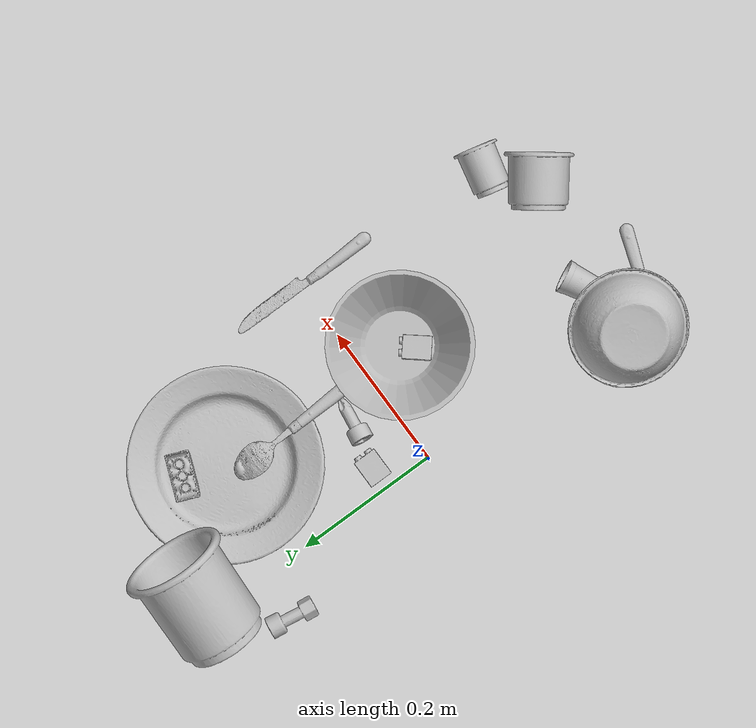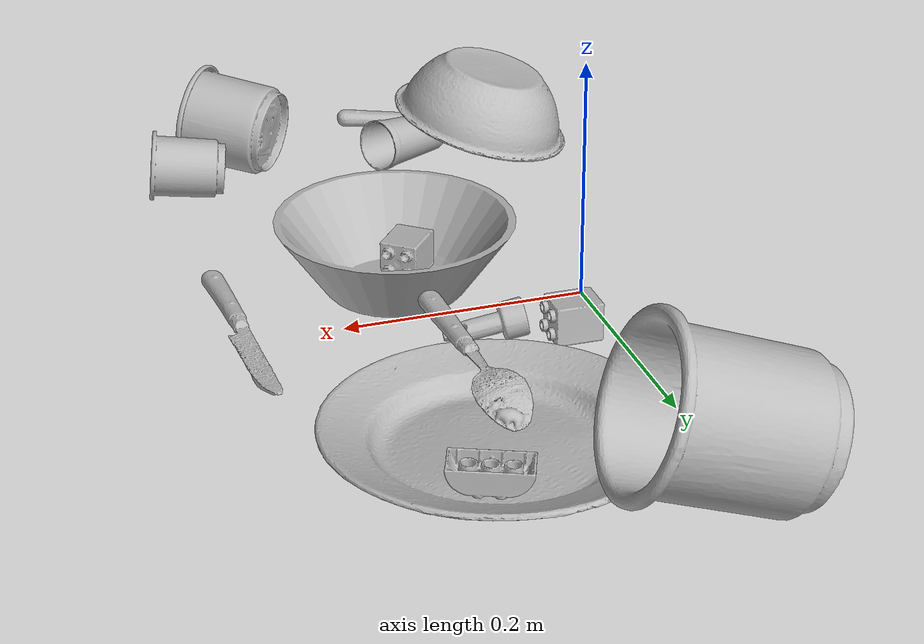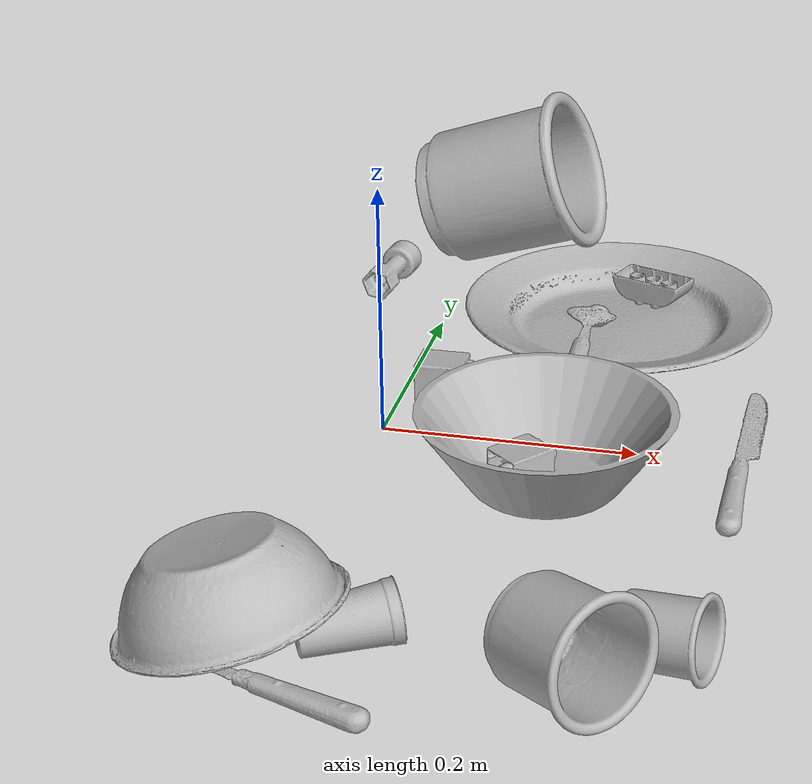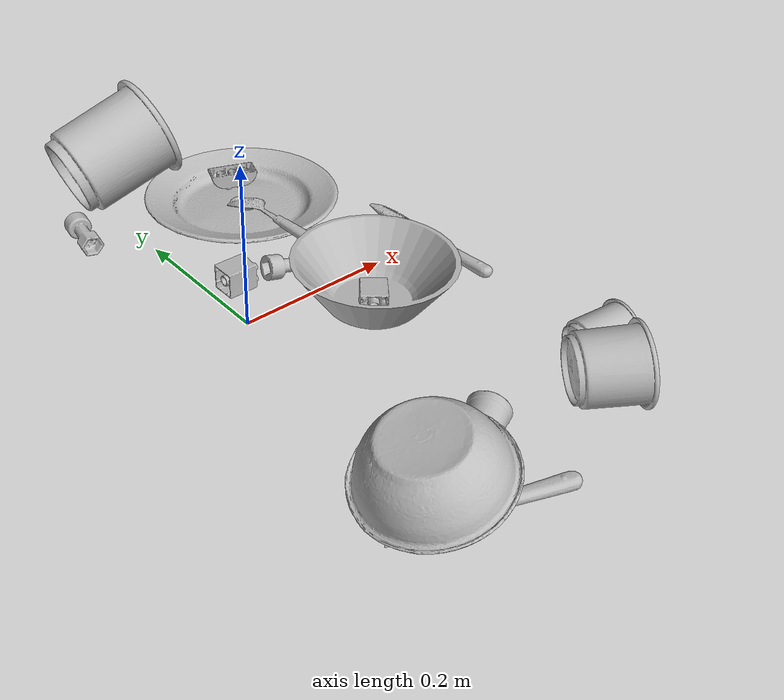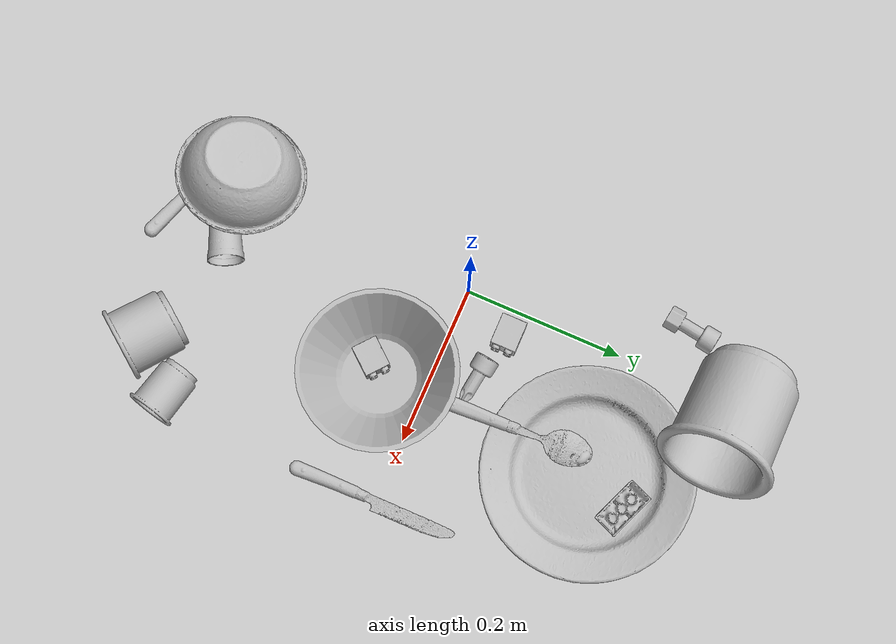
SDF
<sdf version="1.4">
  <world name="default">
    <light name="light1" type="point">
      <pose>0 0 1 0 0 0</pose>
      <diffuse>3 3 3 1</diffuse>
      <specular>3 3 3 1</specular>
    </light>
    <light name="light2" type="point">
      <pose>0 0.5 2 0 0 0</pose>
      <diffuse>1 1 1 1</diffuse>
      <specular>1 1 1 1</specular>
    </light>
    <light name="light3" type="point">
      <pose>0 0.5 2 0 0 0</pose>
      <diffuse>3 3 3 1</diffuse>
      <specular>3 3 3 1</specular>
    </light>
    <scene>
      <ambient>0.7 0.7 0.7</ambient>
    </scene>
    <model name="plate1">
      <link name="link_plate1">
        <collision name="default">
          <geometry>
            <mesh>
              <uri>model://plate/collision_meshes/collision.obj</uri>
              <scale>1.0 1.0 1.0</scale>
            </mesh>
          </geometry>
          <surface>
            <friction>
              <ode>
                <mu>0.5</mu>
                <mu2>0.5</mu2>
              </ode>
            </friction>
          <contact>
        <ode>
            <max_vel>0</max_vel>
            <min_depth>0.0001</min_depth>
            <kp>1e8</kp>
        </ode>
    </contact></surface>
        </collision>
        <visual name="default">
          <geometry>
            <mesh>
              <uri>model://plate/visual_meshes/visual.dae</uri>
              <scale>1.0 1.0 1.0</scale>
            </mesh>
          </geometry>
        </visual>
        <inertial>
          <mass>0.188415065407753</mass>
          <pose>-0.0006044681649655104 0.0002782578521873802 -0.0010561991948634386 0.0022187970116661695 -0.0032254679619122127 0.4526056514331616</pose>
          <inertia>
            <ixx>0.00088140933</ixx>
            <iyy>0.000872979</iyy>
            <izz>0.0017239053</izz>
            <ixy>0</ixy>
            <ixz>0</ixz>
            <iyz>0</iyz>
          </inertia>
        </inertial>
      </link>
      <pose>0.14917835593223572 0.21935252845287323 0.013733409345149994 2.7097452434941827e-06 8.903870103369007e-06 0.9584630815178076</pose>
    </model>
    <model name="cup1">
      <link name="link_cup1">
        <collision name="default">
          <geometry>
            <mesh>
              <uri>model://d_cups/collision_meshes/collision.obj</uri>
              <scale>2.0 2.0 2.0</scale>
            </mesh>
          </geometry>
          <surface>
            <friction>
              <ode>
                <mu>0.5</mu>
                <mu2>0.5</mu2>
              </ode>
            </friction>
          <contact>
        <ode>
            <max_vel>0</max_vel>
            <min_depth>0.0001</min_depth>
            <kp>1e8</kp>
        </ode>
    </contact></surface>
        </collision>
        <visual name="default">
          <geometry>
            <mesh>
              <uri>model://d_cups/visual_meshes/visual.dae</uri>
              <scale>2.0 2.0 2.0</scale>
            </mesh>
          </geometry>
        </visual>
        <inertial>
          <mass>0.39843064546585083</mass>
          <pose>0.0016136104241013527 0.0038234808016568422 -0.004533304367214441 0.24012134810188138 -0.24709791903716813 0.5942561701250738</pose>
          <inertia>
            <ixx>0.0013343208</ixx>
            <iyy>0.001330459</iyy>
            <izz>0.001207787</izz>
            <ixy>0</ixy>
            <ixz>0</ixz>
            <iyz>0</iyz>
          </inertia>
        </inertial>
      </link>
      <pose>0.026860419660806656 0.3475363254547119 0.07370321452617645 -1.0479169102793529 0.8665923747875498 -1.2215731188113108</pose>
    </model>
    <model name="silverware1">
      <link name="link_silverware1">
        <collision name="default">
          <geometry>
            <mesh>
              <uri>model://knife/collision_meshes/collision.obj</uri>
              <scale>1.0 1.0 1.0</scale>
            </mesh>
          </geometry>
          <surface>
            <friction>
              <ode>
                <mu>0.5</mu>
                <mu2>0.5</mu2>
              </ode>
            </friction>
          <contact>
        <ode>
            <max_vel>0</max_vel>
            <min_depth>0.0001</min_depth>
            <kp>1e8</kp>
        </ode>
    </contact></surface>
        </collision>
        <visual name="default">
          <geometry>
            <mesh>
              <uri>model://knife/visual_meshes/visual.dae</uri>
              <scale>1.0 1.0 1.0</scale>
            </mesh>
          </geometry>
        </visual>
        <inertial>
          <mass>0.027211036533117294</mass>
          <pose>-0.02378525771200657 0.0015275125624611974 5.062023410573602e-05 0.0730549860308878 0.01724841828598218 -0.007409817457274567</pose>
          <inertia>
            <ixx>7.723595e-07</ixx>
            <iyy>0.000104540384</iyy>
            <izz>0.00010478913</izz>
            <ixy>0</ixy>
            <ixz>0</ixz>
            <iyz>0</iyz>
          </inertia>
        </inertial>
      </link>
      <pose>0.28277701139450073 -0.0049021560698747635 0.007946520112454891 -0.02390801757233554 -0.01454250938298481 1.5674745844498088</pose>
    </model>
    <model name="silverware2">
      <link name="link_silverware2">
        <collision name="default">
          <geometry>
            <mesh>
              <uri>model://fork/collision_meshes/collision.obj</uri>
              <scale>1.0 1.0 1.0</scale>
            </mesh>
          </geometry>
          <surface>
            <friction>
              <ode>
                <mu>0.5</mu>
                <mu2>0.5</mu2>
              </ode>
            </friction>
          <contact>
        <ode>
            <max_vel>0</max_vel>
            <min_depth>0.0001</min_depth>
            <kp>1e8</kp>
        </ode>
    </contact></surface>
        </collision>
        <visual name="default">
          <geometry>
            <mesh>
              <uri>model://fork/visual_meshes/visual.dae</uri>
              <scale>1.0 1.0 1.0</scale>
            </mesh>
          </geometry>
        </visual>
        <inertial>
          <mass>0.01567319966852665</mass>
          <pose>-0.029570044949650764 0.00046588233090005815 0.0003218860656488687 -0.013551693849150472 -0.010977837004960822 0.014453899894816049</pose>
          <inertia>
            <ixx>5.494343e-07</ixx>
            <iyy>4.0918225e-05</iyy>
            <izz>4.1163967e-05</izz>
            <ixy>0</ixy>
            <ixz>0</ixz>
            <iyz>0</iyz>
          </inertia>
        </inertial>
      </link>
      <pose>0.0009989403188228607 -0.35765182971954346 0.007474684622138739 -3.0729339541592817 0.0023019500554716686 2.7959905721826726</pose>
    </model>
    <model name="silverware3">
      <link name="link_silverware3">
        <collision name="default">
          <geometry>
            <mesh>
              <uri>model://spoon/collision_meshes/collision.obj</uri>
              <scale>1.0 1.0 1.0</scale>
            </mesh>
          </geometry>
          <surface>
            <friction>
              <ode>
                <mu>0.5</mu>
                <mu2>0.5</mu2>
              </ode>
            </friction>
          <contact>
        <ode>
            <max_vel>0</max_vel>
            <min_depth>0.0001</min_depth>
            <kp>1e8</kp>
        </ode>
    </contact></surface>
        </collision>
        <visual name="default">
          <geometry>
            <mesh>
              <uri>model://spoon/visual_meshes/visual.dae</uri>
              <scale>1.0 1.0 1.0</scale>
            </mesh>
          </geometry>
        </visual>
        <inertial>
          <mass>0.020675545558333397</mass>
          <pose>-0.0055263228714466095 -0.001603417913429439 -0.0007271659560501575 0.03521671071703309 -0.03906584129558259 0.006150610048623938</pose>
          <inertia>
            <ixx>1.1500075e-06</ixx>
            <iyy>7.866978e-05</iyy>
            <izz>7.923691e-05</izz>
            <ixy>0</ixy>
            <ixz>0</ixz>
            <iyz>0</iyz>
          </inertia>
        </inertial>
      </link>
      <pose>0.13688679039478302 0.12061244994401932 0.028649436309933662 -3.050583712550662 -0.007810180572408128 1.6104327903188458</pose>
    </model>
    <model name="cup3">
      <link name="link_cup3">
        <collision name="default">
          <geometry>
            <mesh>
              <uri>model://h_cups/collision_meshes/collision.obj</uri>
              <scale>1.0 1.0 1.0</scale>
            </mesh>
          </geometry>
          <surface>
            <friction>
              <ode>
                <mu>0.5</mu>
                <mu2>0.5</mu2>
              </ode>
            </friction>
          <contact>
        <ode>
            <max_vel>0</max_vel>
            <min_depth>0.0001</min_depth>
            <kp>1e8</kp>
        </ode>
    </contact></surface>
        </collision>
        <visual name="default">
          <geometry>
            <mesh>
              <uri>model://h_cups/visual_meshes/visual.dae</uri>
              <scale>1.0 1.0 1.0</scale>
            </mesh>
          </geometry>
        </visual>
        <inertial>
          <mass>0.08491484075784683</mass>
          <pose>-2.702520214370452e-05 0.00023018663341645151 -0.0018405397422611713 -0.02436220805872295 0.06545280106490914 0.1288526015338695</pose>
          <inertia>
            <ixx>0.000109663546</ixx>
            <iyy>0.00010835491</iyy>
            <izz>0.00011500697</izz>
            <ixy>0</ixy>
            <ixz>0</ixz>
            <iyz>0</iyz>
          </inertia>
        </inertial>
      </link>
      <pose>0.20522694289684296 -0.3305191695690155 0.04214634746313095 1.162790543319619 1.3033327264719252 0.5266711316311281</pose>
    </model>
    <model name="cup4">
      <link name="link_cup4">
        <collision name="default">
          <geometry>
            <mesh>
              <uri>model://cup_small/collision_meshes/collision.obj</uri>
              <scale>1.0 1.0 1.0</scale>
            </mesh>
          </geometry>
          <surface>
            <friction>
              <ode>
                <mu>0.5</mu>
                <mu2>0.5</mu2>
              </ode>
            </friction>
          <contact>
        <ode>
            <max_vel>0</max_vel>
            <min_depth>0.0001</min_depth>
            <kp>1e8</kp>
        </ode>
    </contact></surface>
        </collision>
        <visual name="default">
          <geometry>
            <mesh>
              <uri>model://cup_small/visual_meshes/visual.dae</uri>
              <scale>1.0 1.0 1.0</scale>
            </mesh>
          </geometry>
        </visual>
        <inertial>
          <mass>0.024220753461122513</mass>
          <pose>0.00010482438665349036 -0.00033778438228182495 -0.010742821730673313 -0.011493274197159384 -0.01528013747447056 -0.5058088438882253</pose>
          <inertia>
            <ixx>1.4260815e-05</ixx>
            <iyy>1.433438e-05</iyy>
            <izz>6.4388e-06</izz>
            <ixy>0</ixy>
            <ixz>0</ixz>
            <iyz>0</iyz>
          </inertia>
        </inertial>
      </link>
      <pose>0.05576154589653015 -0.3003941476345062 0.01974673569202423 -1.4268790486246516 0.8466613201119646 -0.9893098920155149</pose>
    </model>
    <model name="cup5">
      <link name="link_cup5">
        <collision name="default">
          <geometry>
            <mesh>
              <uri>model://b_cups/collision_meshes/collision.obj</uri>
              <scale>1.0 1.0 1.0</scale>
            </mesh>
          </geometry>
          <surface>
            <friction>
              <ode>
                <mu>0.5</mu>
                <mu2>0.5</mu2>
              </ode>
            </friction>
          <contact>
        <ode>
            <max_vel>0</max_vel>
            <min_depth>0.0001</min_depth>
            <kp>1e8</kp>
        </ode>
    </contact></surface>
        </collision>
        <visual name="default">
          <geometry>
            <mesh>
              <uri>model://b_cups/visual_meshes/visual.dae</uri>
              <scale>1.0 1.0 1.0</scale>
            </mesh>
          </geometry>
        </visual>
        <inertial>
          <mass>0.049698356539011</mass>
          <pose>0.0005182003951631486 0.0018058595014736056 -0.0013381819007918239 0.1135633586286738 0.03872473724046268 -0.3456911343663658</pose>
          <inertia>
            <ixx>3.2531058e-05</ixx>
            <iyy>3.1913434e-05</iyy>
            <izz>2.7374275e-05</izz>
            <ixy>0</ixy>
            <ixz>0</ixz>
            <iyz>0</iyz>
          </inertia>
        </inertial>
      </link>
      <pose>0.25949108600616455 -0.2829025685787201 0.027842262759804726 -1.4786533690660943 -0.25023476848511883 -1.8208232959293253</pose>
    </model>
    <model name="bowl1">
      <link name="link_bowl1">
        <collision name="default">
          <geometry>
            <mesh>
              <uri>model://bowl/collision_meshes/collision.obj</uri>
              <scale>1.0 1.0 1.0</scale>
            </mesh>
          </geometry>
          <surface>
            <friction>
              <ode>
                <mu>0.5</mu>
                <mu2>0.5</mu2>
              </ode>
            </friction>
          <contact>
        <ode>
            <max_vel>0</max_vel>
            <min_depth>0.0001</min_depth>
            <kp>1e8</kp>
        </ode>
    </contact></surface>
        </collision>
        <visual name="default">
          <geometry>
            <mesh>
              <uri>model://bowl/visual_meshes/visual.dae</uri>
              <scale>1.0 1.0 1.0</scale>
            </mesh>
          </geometry>
        </visual>
        <inertial>
          <mass>0.10713337361812592</mass>
          <pose>0.00020444899564608932 -0.001030207029543817 -0.0008042642148211598 -0.015763984617069283 0.014546905390658569 0.7140476331316008</pose>
          <inertia>
            <ixx>0.0002460938</ixx>
            <iyy>0.00024059511</iyy>
            <izz>0.00041401442</izz>
            <ixy>0</ixy>
            <ixz>0</ixz>
            <iyz>0</iyz>
          </inertia>
        </inertial>
      </link>
      <pose>-0.025661500170826912 -0.31065937876701355 0.046858396381139755 2.8821301767094862 0.03924817144932221 1.4349945523213574</pose>
    </model>
    <model name="bowl2">
      <link name="link_bowl2">
        <collision name="default">
          <geometry>
            <mesh>
              <uri>model://bowl_a/collision_meshes/collision.obj</uri>
              <scale>1.0 1.0 1.0</scale>
            </mesh>
          </geometry>
          <surface>
            <friction>
              <ode>
                <mu>0.5</mu>
                <mu2>0.5</mu2>
              </ode>
            </friction>
          <contact>
        <ode>
            <max_vel>0</max_vel>
            <min_depth>0.0001</min_depth>
            <kp>1e8</kp>
        </ode>
    </contact></surface>
        </collision>
        <visual name="default">
          <geometry>
            <mesh>
              <uri>model://bowl_a/visual_meshes/visual.dae</uri>
              <scale>1.0 1.0 1.0</scale>
            </mesh>
          </geometry>
        </visual>
        <inertial>
          <mass>0.5226007103919983</mass>
          <pose>0.00027867400785908103 4.731409717351198e-05 -0.0013765293406322598 -0.0009805372975616423 -0.0010938241101444716 -0.19123543414166835</pose>
          <inertia>
            <ixx>0.0014878683</ixx>
            <iyy>0.0014970028</iyy>
            <izz>0.0026462309</izz>
            <ixy>0</ixy>
            <ixz>0</ixz>
            <iyz>0</iyz>
          </inertia>
        </inertial>
      </link>
      <pose>0.13985583186149597 -0.057690151035785675 0.03038298338651657 -7.68740472518078e-07 4.009611006988923e-07 1.6020447263079853</pose>
    </model>
    <model name="toy1">
      <link name="link_toy1">
        <collision name="default">
          <geometry>
            <mesh>
              <uri>model://f_lego_duplo/collision_meshes/collision.obj</uri>
              <scale>1.0 1.0 1.0</scale>
            </mesh>
          </geometry>
          <surface>
            <friction>
              <ode>
                <mu>0.5</mu>
                <mu2>0.5</mu2>
              </ode>
            </friction>
          <contact>
        <ode>
            <max_vel>0</max_vel>
            <min_depth>0.0001</min_depth>
            <kp>1e8</kp>
        </ode>
    </contact></surface>
        </collision>
        <visual name="default">
          <geometry>
            <mesh>
              <uri>model://f_lego_duplo/visual_meshes/visual.dae</uri>
              <scale>1.0 1.0 1.0</scale>
            </mesh>
          </geometry>
        </visual>
        <inertial>
          <mass>0.04674473777413368</mass>
          <pose>2.3694283299846575e-05 0.00013393160770647228 0.0018837876850739121 0.029838743240884653 -0.014424615896258132 -0.6756775311218791</pose>
          <inertia>
            <ixx>9.877422e-06</ixx>
            <iyy>9.965418e-06</iyy>
            <izz>8.57402e-06</izz>
            <ixy>0</ixy>
            <ixz>0</ixz>
            <iyz>0</iyz>
          </inertia>
        </inertial>
      </link>
      <pose>0.03392312303185463 0.0662924125790596 0.016202963888645172 1.58102735210946 1.5707331743733657 1.5809358191610277</pose>
    </model>
    <model name="toy2">
      <link name="link_toy2">
        <collision name="default">
          <geometry>
            <mesh>
              <uri>model://b_lego_duplo/collision_meshes/collision.obj</uri>
              <scale>1.0 1.0 1.0</scale>
            </mesh>
          </geometry>
          <surface>
            <friction>
              <ode>
                <mu>0.5</mu>
                <mu2>0.5</mu2>
              </ode>
            </friction>
          <contact>
        <ode>
            <max_vel>0</max_vel>
            <min_depth>0.0001</min_depth>
            <kp>1e8</kp>
        </ode>
    </contact></surface>
        </collision>
        <visual name="default">
          <geometry>
            <mesh>
              <uri>model://b_lego_duplo/visual_meshes/visual.dae</uri>
              <scale>1.0 1.0 1.0</scale>
            </mesh>
          </geometry>
        </visual>
        <inertial>
          <mass>0.046308279037475586</mass>
          <pose>-0.00011053026537410915 -9.152292477665469e-06 0.001929429010488093 -0.03749474318211287 -0.02635425030857695 0.451892682452606</pose>
          <inertia>
            <ixx>9.477338e-06</ixx>
            <iyy>9.541048e-06</iyy>
            <izz>8.443999e-06</izz>
            <ixy>0</ixy>
            <ixz>0</ixz>
            <iyz>0</iyz>
          </inertia>
        </inertial>
      </link>
      <pose>0.12598729133605957 -0.07245659828186035 0.020257100462913513 1.5805858922214522 -0.0005025945050919952 2.453938815995503</pose>
    </model>
    <model name="toy3">
      <link name="link_toy3">
        <collision name="default">
          <geometry>
            <mesh>
              <uri>model://c_toy_airplane/collision_meshes/collision.obj</uri>
              <scale>1.0 1.0 1.0</scale>
            </mesh>
          </geometry>
          <surface>
            <friction>
              <ode>
                <mu>0.5</mu>
                <mu2>0.5</mu2>
              </ode>
            </friction>
          <contact>
        <ode>
            <max_vel>0</max_vel>
            <min_depth>0.0001</min_depth>
            <kp>1e8</kp>
        </ode>
    </contact></surface>
        </collision>
        <visual name="default">
          <geometry>
            <mesh>
              <uri>model://c_toy_airplane/visual_meshes/visual.dae</uri>
              <scale>1.0 1.0 1.0</scale>
            </mesh>
          </geometry>
        </visual>
        <inertial>
          <mass>0.03609102964401245</mass>
          <pose>-0.00023024271649774164 -4.429565194641327e-07 -0.006080531980842352 -0.006192551548155338 -0.01679780015794874 0.7654806130326979</pose>
          <inertia>
            <ixx>1.6572261e-05</ixx>
            <iyy>1.6525488e-05</iyy>
            <izz>3.890839e-06</izz>
            <ixy>0</ixy>
            <ixz>0</ixz>
            <iyz>0</iyz>
          </inertia>
        </inertial>
      </link>
      <pose>-0.06264694780111313 0.268023818731308 0.014981258660554886 1.6255159826149184 -1.1800894342545072 -0.19822923720236177</pose>
    </model>
    <model name="toy4">
      <link name="link_toy4">
        <collision name="default">
          <geometry>
            <mesh>
              <uri>model://d_toy_airplane/collision_meshes/collision.obj</uri>
              <scale>1.0 1.0 1.0</scale>
            </mesh>
          </geometry>
          <surface>
            <friction>
              <ode>
                <mu>0.5</mu>
                <mu2>0.5</mu2>
              </ode>
            </friction>
          <contact>
        <ode>
            <max_vel>0</max_vel>
            <min_depth>0.0001</min_depth>
            <kp>1e8</kp>
        </ode>
    </contact></surface>
        </collision>
        <visual name="default">
          <geometry>
            <mesh>
              <uri>model://d_toy_airplane/visual_meshes/visual.dae</uri>
              <scale>1.0 1.0 1.0</scale>
            </mesh>
          </geometry>
        </visual>
        <inertial>
          <mass>0.017463792115449905</mass>
          <pose>9.410289203515276e-05 -5.80932101001963e-05 -0.011728095822036266 0.00026611357398368453 0.004679028940218743 0.5192826772494831</pose>
          <inertia>
            <ixx>5.2353053e-06</ixx>
            <iyy>5.239254e-06</iyy>
            <izz>1.5805728e-06</izz>
            <ixy>0</ixy>
            <ixz>0</ixz>
            <iyz>0</iyz>
          </inertia>
        </inertial>
      </link>
      <pose>0.10047808289527893 0.0508246123790741 0.011460835114121437 1.9236467543616995 -0.9526232073245088 1.1398769657432606</pose>
    </model>
    <model name="toy5">
      <link name="link_toy5">
        <collision name="default">
          <geometry>
            <mesh>
              <uri>model://a_lego_duplo/collision_meshes/collision.obj</uri>
              <scale>1.0 1.0 1.0</scale>
            </mesh>
          </geometry>
          <surface>
            <friction>
              <ode>
                <mu>0.5</mu>
                <mu2>0.5</mu2>
              </ode>
            </friction>
          <contact>
        <ode>
            <max_vel>0</max_vel>
            <min_depth>0.0001</min_depth>
            <kp>1e8</kp>
        </ode>
    </contact></surface>
        </collision>
        <visual name="default">
          <geometry>
            <mesh>
              <uri>model://a_lego_duplo/visual_meshes/visual.dae</uri>
              <scale>1.0 1.0 1.0</scale>
            </mesh>
          </geometry>
        </visual>
        <inertial>
          <mass>0.016317613422870636</mass>
          <pose>-0.00011337783507769927 0.00018517576972953975 0.00036926058237440884 -0.01411698761390393 -0.0001256633936569927 6.142942133676727e-05</pose>
          <inertia>
            <ixx>2.0920475e-06</ixx>
            <iyy>4.6866458e-06</iyy>
            <izz>5.8054516e-06</izz>
            <ixy>0</ixy>
            <ixz>0</ixz>
            <iyz>0</iyz>
          </inertia>
        </inertial>
      </link>
      <pose>0.17163269221782684 0.2730734944343567 0.016147464513778687 3.1290910671229004 -0.019422393591017263 -0.38786600902508084</pose>
    </model>
  <physics type="ode">
      <max_contacts>50</max_contacts>
      <ode>
        <solver>
          <type>quick</type>
          <iters>75</iters>
        </solver>
        <constraints>
          <contact_max_correcting_vel>0</contact_max_correcting_vel>
          <contact_surface_layer>0</contact_surface_layer>
        </constraints>
      </ode>
    </physics></world>
</sdf>
